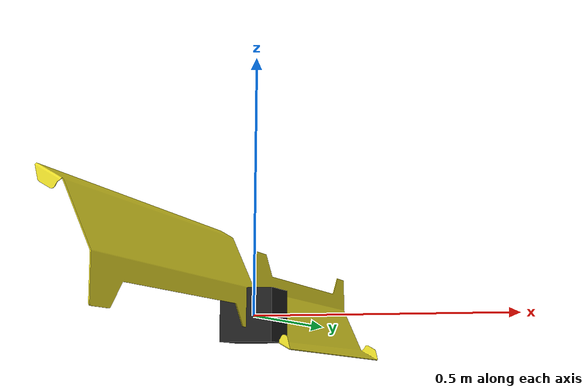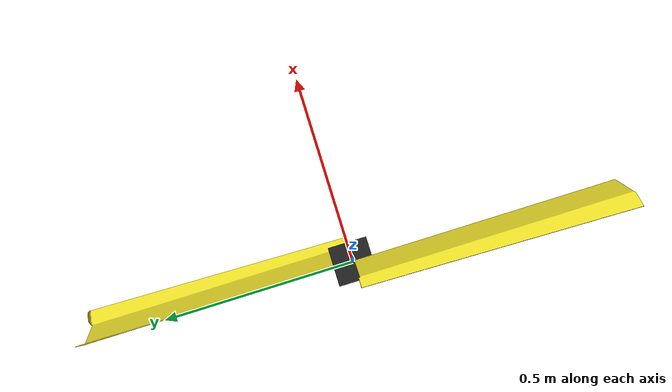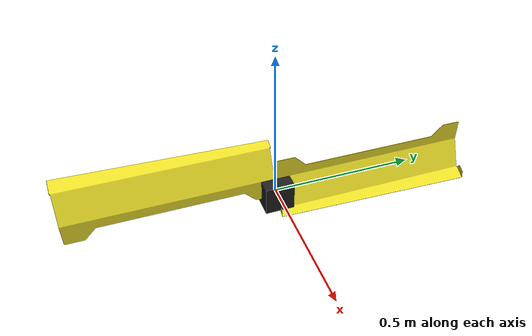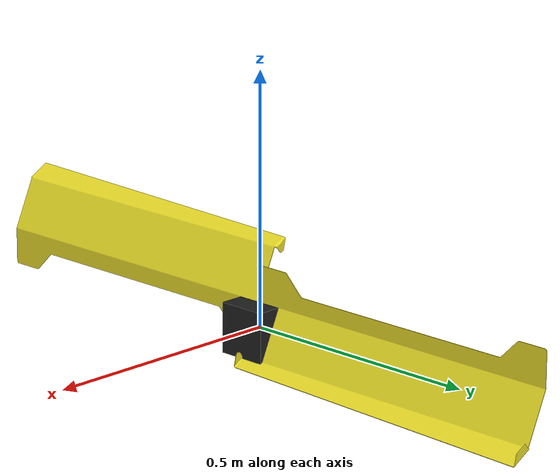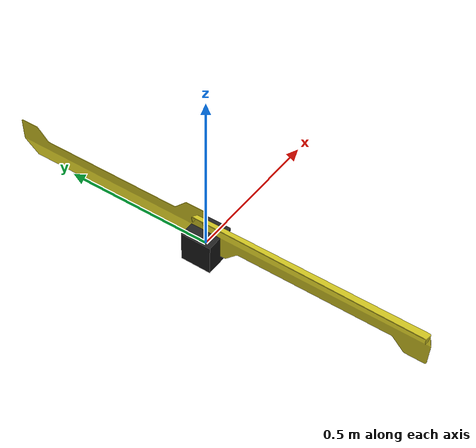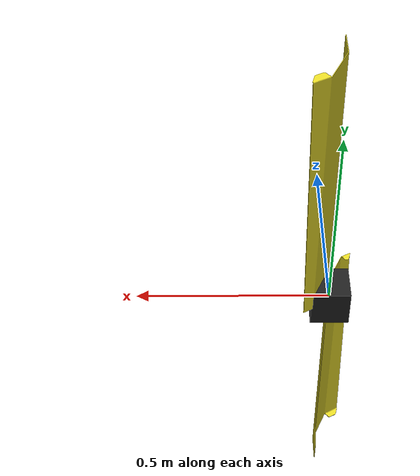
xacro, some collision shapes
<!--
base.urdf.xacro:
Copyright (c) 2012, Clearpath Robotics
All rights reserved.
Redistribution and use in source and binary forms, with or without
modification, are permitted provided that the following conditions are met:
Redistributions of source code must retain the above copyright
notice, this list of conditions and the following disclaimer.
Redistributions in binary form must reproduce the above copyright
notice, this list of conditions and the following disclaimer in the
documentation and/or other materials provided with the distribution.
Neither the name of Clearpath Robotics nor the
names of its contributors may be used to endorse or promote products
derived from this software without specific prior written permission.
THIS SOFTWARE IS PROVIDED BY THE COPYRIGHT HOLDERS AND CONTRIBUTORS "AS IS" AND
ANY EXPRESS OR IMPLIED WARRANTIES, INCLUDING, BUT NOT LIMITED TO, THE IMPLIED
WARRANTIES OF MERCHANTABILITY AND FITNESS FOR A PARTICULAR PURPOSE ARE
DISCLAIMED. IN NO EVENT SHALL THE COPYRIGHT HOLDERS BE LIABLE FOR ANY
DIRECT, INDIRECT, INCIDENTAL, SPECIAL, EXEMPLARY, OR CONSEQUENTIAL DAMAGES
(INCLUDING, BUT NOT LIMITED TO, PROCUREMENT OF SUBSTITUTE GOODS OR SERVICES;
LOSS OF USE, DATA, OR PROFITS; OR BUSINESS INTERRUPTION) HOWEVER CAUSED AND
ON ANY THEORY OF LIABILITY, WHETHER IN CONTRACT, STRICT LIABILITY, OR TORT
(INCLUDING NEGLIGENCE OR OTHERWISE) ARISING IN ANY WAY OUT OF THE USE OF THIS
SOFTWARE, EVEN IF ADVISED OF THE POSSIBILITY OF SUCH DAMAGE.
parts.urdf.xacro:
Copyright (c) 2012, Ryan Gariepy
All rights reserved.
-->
<?xml version="1.0"?>

<robot name="kingfisher"
    xmlns:sensor="http://playerstage.sourceforge.net/gazebo/xmlschema/#sensor"
    xmlns:controller="http://playerstage.sourceforge.net/gazebo/xmlschema/#controller"
    xmlns:interface="http://playerstage.sourceforge.net/gazebo/xmlschema/#interface"
    xmlns:xacro="http://ros.org/wiki/xacro">

    <!-- Included URDF Files -->
    <xacro:include filename="$(find kingfisher_description)/urdf/standard.urdf.xacro" />

    <!-- Set up sonar linkage and configuration -->
    <joint name="base_link_sonar_link_joint" type="fixed">
    <origin xyz="0 0 -0.2" rpy="0 1.57 0" />
        <parent link="base_link"/>
        <child link="sonar_link" />
    </joint>

    <link name="sonar_link">
        <inertial>
            <mass value="1"/>
            <origin xyz="0 0 0"/>
            <inertia ixx="0.1" ixy="0.0" ixz="0.0" iyy="0.1" iyz="0.0" izz="0.1"/>
        </inertial>
    </link>

    <gazebo reference="sonar_link">
        <sensor type="ray" name="sonar_sensor">
            <pose>0 0 0 0 0 0</pose>
            <visualize>false</visualize>
            <update_rate>20</update_rate>
            <ray>
                <scan>
                    <horizontal>
                        <samples>3</samples>
                        <resolution>1</resolution>
                        <min_angle>${-5*M_PI/180}</min_angle>
                        <max_angle>${5*M_PI/180}</max_angle>
                    </horizontal>
                </scan>
                <range>
                    <min>0.10</min>
                    <max>30.0</max>
                    <resolution>0.01</resolution>
                </range>
                <noise>
                    <type>gaussian</type>
                    <mean>0.0</mean>
                    <stddev>0.01</stddev>
                </noise>
            </ray>

            <plugin name="kingfisher_ros_sonar_controller" filename="libkingfisher_ros_sonar.so">
                <gaussianNoise>0.005</gaussianNoise>
                <topicName>sonar</topicName>
                <frameId>sonar_link</frameId>
                <offset>0</offset>
                <drift>0</drift>
                <driftFrequency>0</driftFrequency>
            </plugin>
        </sensor>
    </gazebo>

</robot>

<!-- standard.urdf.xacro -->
<robot name="kingfisher"
    xmlns:sensor="http://playerstage.sourceforge.net/gazebo/xmlschema/#sensor"
    xmlns:controller="http://playerstage.sourceforge.net/gazebo/xmlschema/#controller"
    xmlns:interface="http://playerstage.sourceforge.net/gazebo/xmlschema/#interface"
    xmlns:xacro="http://ros.org/wiki/xacro">

    <!-- Included URDF Files -->
    <xacro:include filename="$(find kingfisher_description)/urdf/base.urdf.xacro" />

    <!-- Set up imu configuration -->
    <gazebo>
        <plugin name="kingfisher_imu" filename="libgazebo_ros_imu.so">
            <updateRate>100.0</updateRate>
            <bodyName>base_link</bodyName>
            <topicName>imu/data</topicName>
            <rpyOffsets>0 0 0</rpyOffsets> <!-- deprecated -->
            <gaussianNoise>0</gaussianNoise> <!-- deprecated -->
            <accelDrift>0.5 0.5 0.5</accelDrift>
            <accelGaussianNoise>0.35 0.35 0.3</accelGaussianNoise>
            <rateDrift>0.1 0.1 0.1</rateDrift>
            <rateGaussianNoise>0.05 0.05 0.015</rateGaussianNoise>
            <headingDrift>0.1</headingDrift>
            <headingGaussianNoise>0.05</headingGaussianNoise>
        </plugin>
    </gazebo>

    <!-- Set up gps configuration -->
    <gazebo>
        <plugin name="kingfisher_gps" filename="libkingfisher_ros_gps.so">
            <alwaysOn>true</alwaysOn>
            <updateRate>4.0</updateRate>
            <bodyName>base_link</bodyName>
            <topicName>navsat/fix</topicName>
            <velocityTopicName>navsat/fix_velocity</velocityTopicName>
            <drift>5.0 5.0 5.0</drift>
            <gaussianNoise>0.1 0.1 0.1</gaussianNoise>
            <velocityDrift>0 0 0</velocityDrift>
            <velocityGaussianNoise>0.1 0.1 0.1</velocityGaussianNoise>
        </plugin>
    </gazebo>

    <!-- Set up camera linkage and configuration -->
    <joint name="base_link_camera_link_joint" type="fixed">
		<origin xyz="0 0 0.2" rpy="0 0 0" />
        <parent link="base_link"/>
        <child link="camera_link" />
    </joint>

    <link name="camera_link">
        <inertial>
            <mass value="1"/>
            <origin xyz="0 0 0"/>
            <inertia ixx="0.1" ixy="0.0" ixz="0.0" iyy="0.1" iyz="0.0" izz="0.1"/>
        </inertial>
    </link>

    <gazebo reference="camera_link">
        <sensor type="camera" name="camera">
            <update_rate>30.0</update_rate>
            <camera name="kingfisher_camera">
                <horizontal_fov>1.3962634</horizontal_fov>
                <image>
                    <width>640</width>
                    <height>480</height>
                    <format>R8G8B8</format>
                </image>
                <clip>
                    <near>0.02</near>
                    <far>300</far>
                </clip>
                <noise>
                    <type>gaussian</type>
                    <mean>0.0</mean>
                    <stddev>0.007</stddev>
                </noise>
            </camera>
            <plugin name="camera_controller" filename="libgazebo_ros_camera.so">
                <alwaysOn>true</alwaysOn>
                <updateRate>30.0</updateRate>
                <cameraName>kingfisher/camera</cameraName>
                <imageTopicName>image_raw</imageTopicName>
                <cameraInfoTopicName>camera_info</cameraInfoTopicName>
                <frameName>camera_link</frameName>
                <hackBaseline>0.07</hackBaseline>
                <distortionK1>0.0</distortionK1>
                <distortionK2>0.0</distortionK2>
                <distortionK3>0.0</distortionK3>
                <distortionT1>0.0</distortionT1>
                <distortionT2>0.0</distortionT2>
            </plugin>
        </sensor>
    </gazebo>

</robot>

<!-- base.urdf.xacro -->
<robot
    xmlns:xi="http://www.w3.org/2001/XInclude"
    xmlns:gazebo="http://playerstage.sourceforge.net/gazebo/xmlschema/#gz"
    xmlns:model="http://playerstage.sourceforge.net/gazebo/xmlschema/#model"
    xmlns:sensor="http://playerstage.sourceforge.net/gazebo/xmlschema/#sensor"
    xmlns:body="http://playerstage.sourceforge.net/gazebo/xmlschema/#body"
    xmlns:geom="http://playerstage.sourceforge.net/gazebo/xmlschema/#geom"
    xmlns:joint="http://playerstage.sourceforge.net/gazebo/xmlschema/#joint"
    xmlns:controller="http://playerstage.sourceforge.net/gazebo/xmlschema/#controller"
    xmlns:interface="http://playerstage.sourceforge.net/gazebo/xmlschema/#interface"
    xmlns:rendering="http://playerstage.sourceforge.net/gazebo/xmlschema/#rendering"
    xmlns:renderable="http://playerstage.sourceforge.net/gazebo/xmlschema/#renderable"
    xmlns:physics="http://playerstage.sourceforge.net/gazebo/xmlschema/#physics"
    xmlns:xacro="http://ros.org/wiki/xacro" name="kingfisher">

	<!-- Included URDF/XACRO Files -->
    <include filename="$(find kingfisher_description)/urdf/parts.urdf.xacro" />

    <!-- PROPERTY LIST -->
    <!--All units in m-kg-s-radians unit system -->
    <property name="M_PI" value="3.1415926535897931" />

    <!-- BASE-FOOTPRINT -->
    <!-- base_footprint is a fictitious link(frame) that is on the ground right below base_link origin, navigation stack depends on this frame -->
    <link name="base_footprint">
        <inertial>
            <mass value="0.0001" />
            <origin xyz="0 0 0" />
            <inertia ixx="0.0001" ixy="0.0" ixz="0.0"
                iyy="0.0001" iyz="0.0"
                izz="0.0001" />
        </inertial>

        <visual>
            <origin xyz="0 0 0" rpy="0 0 0" />
            <geometry>
                <box size="0.001 0.001 0.001" />
            </geometry>
        </visual>
    </link>

    <gazebo reference="base_footprint">
        <turnGravityOff>false</turnGravityOff>
    </gazebo>

    <joint name="base_footprint_joint" type="fixed">
		<origin xyz="0 0 0" rpy="0 0 0" />
        <parent link="base_footprint"/>
        <child link="base_link" />
    </joint>

    <!-- BASE-LINK -->
    <!--Actual body/chassis of the robot-->
    <link name="base_link">
        <inertial>
            <mass value="29" />
            <origin xyz="0 0 0" />
            <inertia ixx="10" ixy="0" ixz="0" iyy="10" iyz="0" izz="10" />
        </inertial>

        <visual>
            <origin xyz="0 0 0" rpy="${M_PI/2} 0 ${M_PI/2}" />
            <geometry>
                <mesh filename="package://kingfisher_description/meshes/kingfisher_base.stl" />
            </geometry>
        </visual>

        <collision>
	        <origin xyz="0 0 0" rpy="0 0 0" />
	        <geometry>
                <box size = "0.1 0.1 0.1"/> <!--making it slightly bigger in x and z direction-->
            </geometry>
        </collision>
    </link>
    <gazebo reference="base_link">
        <material>Gazebo/FlatBlack</material>
        <turnGravityOff>false</turnGravityOff>
    </gazebo>

    <!-- PANEL-LINKS -->
    <!-- Top Plate -->
    <kingfisher_part parent="base_footprint" name="left_panel" mesh="left_panel"
          translateX="0.0" translateY="-0.35" translateZ="0.05"
          rotateX="${M_PI/2}" rotateY="0.0" rotateZ="${M_PI/2}"/>
    <gazebo reference="base_footprint_left_panel_part">
        <material>Gazebo/Yellow</material>
    </gazebo>

    <kingfisher_part parent="base_footprint" name="right_panel" mesh="right_panel"
          translateX="0.0" translateY="0.35" translateZ="0.05"
          rotateX="${M_PI/2}" rotateY="0.0" rotateZ="${-M_PI/2}"/>
    <gazebo reference="base_footprint_right_panel_part">
        <material>Gazebo/Yellow</material>
    </gazebo>

    <!--Gazebo Plugin for simulating Kingfisher dynamics-->
    <gazebo>
	    <plugin name="kingfisher_dynamic" filename="libkingfisher_gazebo_plugins.so">
            <maxForce>62.0</maxForce>
            <bodyName>base_link</bodyName>
            <waterDensity>997.7735</waterDensity>
            <waterLevel>1</waterLevel>
            <xyzDampingFactor>20.0</xyzDampingFactor>
            <yawDampingFactor>20.0</yawDampingFactor>
            <rolPitDampingFactor>5.0</rolPitDampingFactor>
        </plugin>
    </gazebo>

</robot>

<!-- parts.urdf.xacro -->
<robot xmlns:sensor="http://playerstage.sourceforge.net/gazebo/xmlschema/#sensor"
	xmlns:controller="http://playerstage.sourceforge.net/gazebo/xmlschema/#controller"
	xmlns:interface="http://playerstage.sourceforge.net/gazebo/xmlschema/#interface"
	xmlns:xacro="http://ros.org/wiki/xacro" name="kingfisher_part">

	<property name="x_com" value="0.00000000" /> <!-- com : center of mass -->
	<property name="y_com" value="0.00000000" /> <!-- com : center of mass -->
	<property name="z_com" value="0.00000000" /> <!-- com : center of mass -->

	<property name="x_size" value="1.0" />
	<property name="y_size" value="1.0" />
	<property name="z_size" value="1.0" />

	<property name="mass" value="0.1" /> <!-- in kg-->

	<property name="ixx_com_cs" value="0.01" /> <!-- at center of mass aligned with coordinate system, kg*m^2-->
	<property name="ixy_com_cs" value="0.0" /> <!-- at center of mass aligned with coordinate system, kg*m^2-->
	<property name="ixz_com_cs" value="0.0" /> <!-- at center of mass aligned with coordinate system, kg*m^2-->
	<property name="iyy_com_cs" value="0.01" /> <!-- at center of mass aligned with coordinate system, kg*m^2-->
	<property name="iyz_com_cs" value="0.00" /> <!-- at center of mass aligned with coordinate system, kg*m^2-->
	<property name="izz_com_cs" value="0.01" /> <!-- at center of mass aligned with coordinate system, kg*m^2-->

	<xacro:macro name="kingfisher_part" params="parent name mesh translateX translateY translateZ rotateX rotateY rotateZ">
		<joint name="${parent}_${name}_joint" type="fixed">
		    <origin xyz="${translateX} ${translateY} ${translateZ}"
		            rpy="${rotateX} ${rotateY} ${rotateZ}" />
		    <parent link="${parent}" />
		    <child link="${parent}_${name}_part" />
		</joint>

		<link name="${parent}_${name}_part">
			<inertial>
				<mass value="${mass}" />
				<origin xyz="${x_com} ${y_com} ${z_com}" />
				<inertia ixx="${ixx_com_cs}" ixy="${ixy_com_cs}" ixz="${ixz_com_cs}"
					iyy="${iyy_com_cs}" iyz="${iyz_com_cs}" izz="${izz_com_cs}" />
			</inertial>
			<visual>
				<origin xyz="0 0 0" rpy="0 0 0" />
				<geometry>
					<mesh filename="package://kingfisher_description/meshes/${mesh}.stl" />
				</geometry>
			</visual>
			<collision>
				<origin xyz="0 0 0" rpy="0 0 0"/>
				<geometry>
					<box size="0.001 0.001 0.001" /> <!--the collision boundary for parts are taken into account by collision boundary of the base_link-->
				</geometry>
			</collision>
		</link>

  	</xacro:macro>
</robot>
